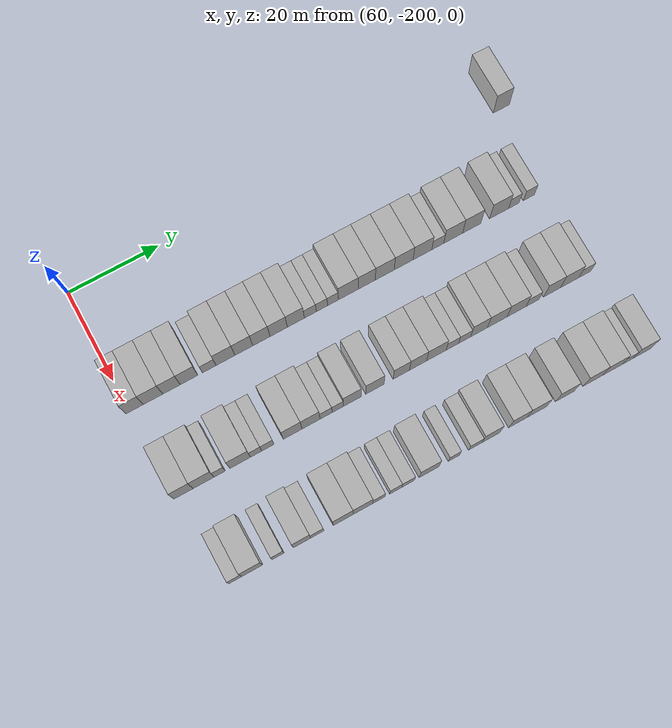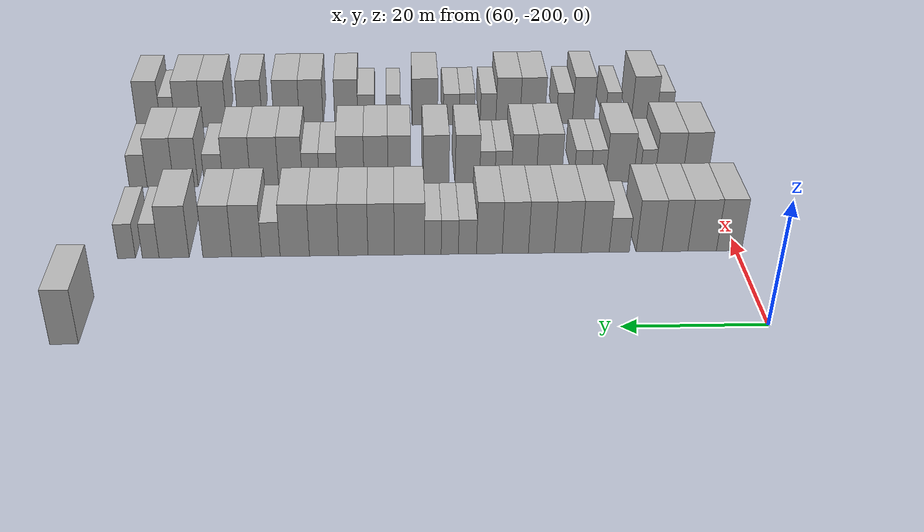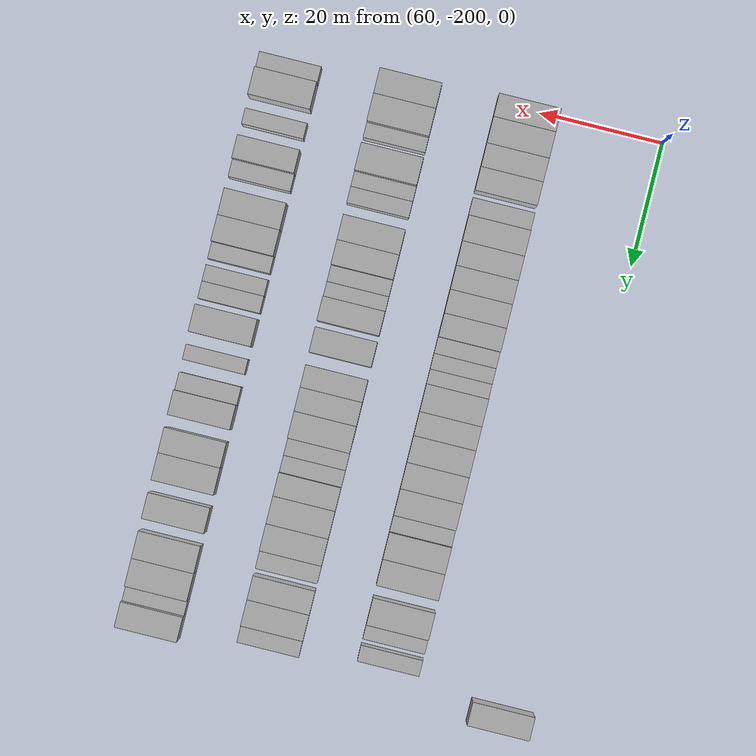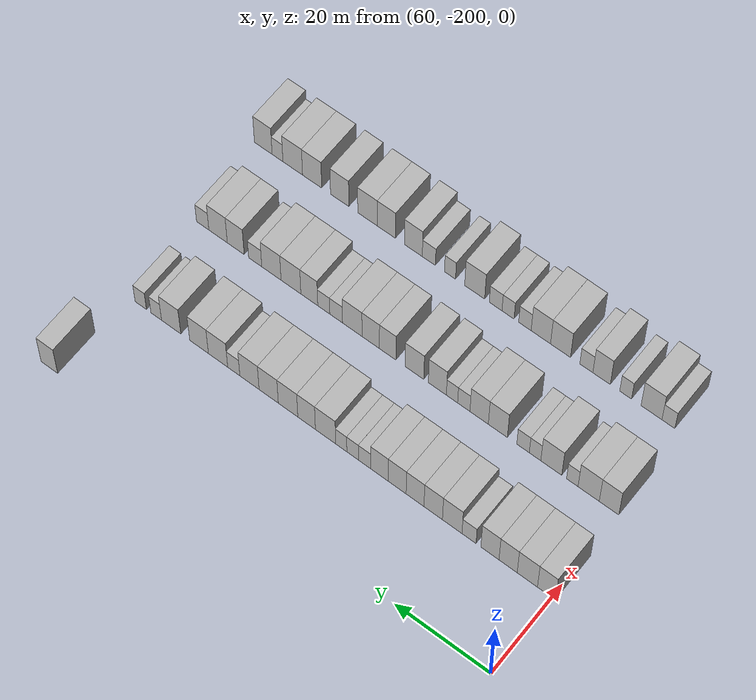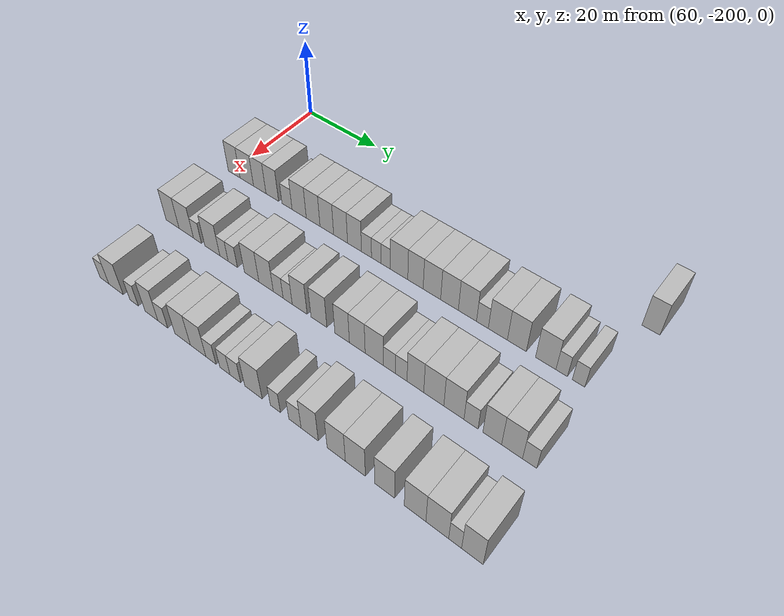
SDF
<sdf version="1.6">
 <world name="default">
  <model name="building_395">
   <static>1</static>
   <pose>63.0000 -105.9055 0 0.000000 0.000000 0.000000</pose>
   <link name="link">
    <pose>0 0 4.50 0 0 0</pose>
    <collision name="collision"><geometry><box><size>10.0000 3.7795 9.0000</size></box></geometry></collision>
    <visual name="visual">
     <cast_shadows>0</cast_shadows>
     <geometry><box><size>10.0000 3.7795 9.0000</size></box></geometry>
     <material>
      <script>
       <uri>model://HANNAS_wall/materials/scripts</uri>
       <uri>model://HANNAS_wall/materials/textures</uri>
       <name>vrc/HANNAS_wall</name>
      </script>
     </material>
    </visual>
   </link>
  </model>
  <model name="building_557">
   <static>1</static>
   <pose>82.0000 -198.8554 0 0.000000 0.000000 0.000000</pose>
   <link name="link">
    <pose>0 0 4.50 0 0 0</pose>
    <collision name="collision"><geometry><box><size>10.0000 3.7321 9.0000</size></box></geometry></collision>
    <visual name="visual">
     <cast_shadows>0</cast_shadows>
     <geometry><box><size>10.0000 3.7321 9.0000</size></box></geometry>
     <material>
      <script>
       <uri>model://HANNAS_wall/materials/scripts</uri>
       <uri>model://HANNAS_wall/materials/textures</uri>
       <name>vrc/HANNAS_wall</name>
      </script>
     </material>
    </visual>
   </link>
  </model>
  <model name="building_558">
   <static>1</static>
   <pose>82.0000 -194.8792 0 0.000000 0.000000 0.000000</pose>
   <link name="link">
    <pose>0 0 4.50 0 0 0</pose>
    <collision name="collision"><geometry><box><size>10.0000 4.2202 9.0000</size></box></geometry></collision>
    <visual name="visual">
     <cast_shadows>0</cast_shadows>
     <geometry><box><size>10.0000 4.2202 9.0000</size></box></geometry>
     <material>
      <script>
       <uri>model://HANNAS_wall/materials/scripts</uri>
       <uri>model://HANNAS_wall/materials/textures</uri>
       <name>vrc/HANNAS_wall</name>
      </script>
     </material>
    </visual>
   </link>
  </model>
  <model name="building_559">
   <static>1</static>
   <pose>82.0000 -190.8675 0 0.000000 0.000000 0.000000</pose>
   <link name="link">
    <pose>0 0 4.50 0 0 0</pose>
    <collision name="collision"><geometry><box><size>10.0000 3.8033 9.0000</size></box></geometry></collision>
    <visual name="visual">
     <cast_shadows>0</cast_shadows>
     <geometry><box><size>10.0000 3.8033 9.0000</size></box></geometry>
     <material>
      <script>
       <uri>model://HANNAS_wall/materials/scripts</uri>
       <uri>model://HANNAS_wall/materials/textures</uri>
       <name>vrc/HANNAS_wall</name>
      </script>
     </material>
    </visual>
   </link>
  </model>
  <model name="building_560">
   <static>1</static>
   <pose>82.0000 -187.0584 0 0.000000 0.000000 0.000000</pose>
   <link name="link">
    <pose>0 0 4.50 0 0 0</pose>
    <collision name="collision"><geometry><box><size>10.0000 3.8149 9.0000</size></box></geometry></collision>
    <visual name="visual">
     <cast_shadows>0</cast_shadows>
     <geometry><box><size>10.0000 3.8149 9.0000</size></box></geometry>
     <material>
      <script>
       <uri>model://HANNAS_wall/materials/scripts</uri>
       <uri>model://HANNAS_wall/materials/textures</uri>
       <name>vrc/HANNAS_wall</name>
      </script>
     </material>
    </visual>
   </link>
  </model>
  <model name="building_561">
   <static>1</static>
   <pose>82.0000 -182.6638 0 0.000000 0.000000 0.000000</pose>
   <link name="link">
    <pose>0 0 3.00 0 0 0</pose>
    <collision name="collision"><geometry><box><size>10.0000 2.9743 6.0000</size></box></geometry></collision>
    <visual name="visual">
     <cast_shadows>0</cast_shadows>
     <geometry><box><size>10.0000 2.9743 6.0000</size></box></geometry>
     <material>
      <script>
       <uri>model://HANNAS_wall/materials/scripts</uri>
       <uri>model://HANNAS_wall/materials/textures</uri>
       <name>vrc/HANNAS_wall</name>
      </script>
     </material>
    </visual>
   </link>
  </model>
  <model name="building_562">
   <static>1</static>
   <pose>82.0000 -179.1077 0 0.000000 0.000000 0.000000</pose>
   <link name="link">
    <pose>0 0 4.50 0 0 0</pose>
    <collision name="collision"><geometry><box><size>10.0000 4.1378 9.0000</size></box></geometry></collision>
    <visual name="visual">
     <cast_shadows>0</cast_shadows>
     <geometry><box><size>10.0000 4.1378 9.0000</size></box></geometry>
     <material>
      <script>
       <uri>model://HANNAS_wall/materials/scripts</uri>
       <uri>model://HANNAS_wall/materials/textures</uri>
       <name>vrc/HANNAS_wall</name>
      </script>
     </material>
    </visual>
   </link>
  </model>
  <model name="building_563">
   <static>1</static>
   <pose>82.0000 -175.0739 0 0.000000 0.000000 0.000000</pose>
   <link name="link">
    <pose>0 0 4.50 0 0 0</pose>
    <collision name="collision"><geometry><box><size>10.0000 3.9298 9.0000</size></box></geometry></collision>
    <visual name="visual">
     <cast_shadows>0</cast_shadows>
     <geometry><box><size>10.0000 3.9298 9.0000</size></box></geometry>
     <material>
      <script>
       <uri>model://HANNAS_wall/materials/scripts</uri>
       <uri>model://HANNAS_wall/materials/textures</uri>
       <name>vrc/HANNAS_wall</name>
      </script>
     </material>
    </visual>
   </link>
  </model>
  <model name="building_564">
   <static>1</static>
   <pose>82.0000 -171.1996 0 0.000000 0.000000 0.000000</pose>
   <link name="link">
    <pose>0 0 4.50 0 0 0</pose>
    <collision name="collision"><geometry><box><size>10.0000 3.8189 9.0000</size></box></geometry></collision>
    <visual name="visual">
     <cast_shadows>0</cast_shadows>
     <geometry><box><size>10.0000 3.8189 9.0000</size></box></geometry>
     <material>
      <script>
       <uri>model://HANNAS_wall/materials/scripts</uri>
       <uri>model://HANNAS_wall/materials/textures</uri>
       <name>vrc/HANNAS_wall</name>
      </script>
     </material>
    </visual>
   </link>
  </model>
  <model name="building_565">
   <static>1</static>
   <pose>82.0000 -167.3756 0 0.000000 0.000000 0.000000</pose>
   <link name="link">
    <pose>0 0 4.50 0 0 0</pose>
    <collision name="collision"><geometry><box><size>10.0000 3.8292 9.0000</size></box></geometry></collision>
    <visual name="visual">
     <cast_shadows>0</cast_shadows>
     <geometry><box><size>10.0000 3.8292 9.0000</size></box></geometry>
     <material>
      <script>
       <uri>model://HANNAS_wall/materials/scripts</uri>
       <uri>model://HANNAS_wall/materials/textures</uri>
       <name>vrc/HANNAS_wall</name>
      </script>
     </material>
    </visual>
   </link>
  </model>
  <model name="building_566">
   <static>1</static>
   <pose>82.0000 -163.5736 0 0.000000 0.000000 0.000000</pose>
   <link name="link">
    <pose>0 0 4.50 0 0 0</pose>
    <collision name="collision"><geometry><box><size>10.0000 3.7747 9.0000</size></box></geometry></collision>
    <visual name="visual">
     <cast_shadows>0</cast_shadows>
     <geometry><box><size>10.0000 3.7747 9.0000</size></box></geometry>
     <material>
      <script>
       <uri>model://HANNAS_wall/materials/scripts</uri>
       <uri>model://HANNAS_wall/materials/textures</uri>
       <name>vrc/HANNAS_wall</name>
      </script>
     </material>
    </visual>
   </link>
  </model>
  <model name="building_567">
   <static>1</static>
   <pose>82.0000 -160.3557 0 0.000000 0.000000 0.000000</pose>
   <link name="link">
    <pose>0 0 3.00 0 0 0</pose>
    <collision name="collision"><geometry><box><size>10.0000 2.6612 6.0000</size></box></geometry></collision>
    <visual name="visual">
     <cast_shadows>0</cast_shadows>
     <geometry><box><size>10.0000 2.6612 6.0000</size></box></geometry>
     <material>
      <script>
       <uri>model://HANNAS_wall/materials/scripts</uri>
       <uri>model://HANNAS_wall/materials/textures</uri>
       <name>vrc/HANNAS_wall</name>
      </script>
     </material>
    </visual>
   </link>
  </model>
  <model name="building_568">
   <static>1</static>
   <pose>82.0000 -157.7683 0 0.000000 0.000000 0.000000</pose>
   <link name="link">
    <pose>0 0 3.00 0 0 0</pose>
    <collision name="collision"><geometry><box><size>10.0000 2.5135 6.0000</size></box></geometry></collision>
    <visual name="visual">
     <cast_shadows>0</cast_shadows>
     <geometry><box><size>10.0000 2.5135 6.0000</size></box></geometry>
     <material>
      <script>
       <uri>model://HANNAS_wall/materials/scripts</uri>
       <uri>model://HANNAS_wall/materials/textures</uri>
       <name>vrc/HANNAS_wall</name>
      </script>
     </material>
    </visual>
   </link>
  </model>
  <model name="building_569">
   <static>1</static>
   <pose>82.0000 -155.3016 0 0.000000 0.000000 0.000000</pose>
   <link name="link">
    <pose>0 0 3.00 0 0 0</pose>
    <collision name="collision"><geometry><box><size>10.0000 2.4199 6.0000</size></box></geometry></collision>
    <visual name="visual">
     <cast_shadows>0</cast_shadows>
     <geometry><box><size>10.0000 2.4199 6.0000</size></box></geometry>
     <material>
      <script>
       <uri>model://HANNAS_wall/materials/scripts</uri>
       <uri>model://HANNAS_wall/materials/textures</uri>
       <name>vrc/HANNAS_wall</name>
      </script>
     </material>
    </visual>
   </link>
  </model>
  <model name="building_570">
   <static>1</static>
   <pose>82.0000 -151.8753 0 0.000000 0.000000 0.000000</pose>
   <link name="link">
    <pose>0 0 4.50 0 0 0</pose>
    <collision name="collision"><geometry><box><size>10.0000 4.4326 9.0000</size></box></geometry></collision>
    <visual name="visual">
     <cast_shadows>0</cast_shadows>
     <geometry><box><size>10.0000 4.4326 9.0000</size></box></geometry>
     <material>
      <script>
       <uri>model://HANNAS_wall/materials/scripts</uri>
       <uri>model://HANNAS_wall/materials/textures</uri>
       <name>vrc/HANNAS_wall</name>
      </script>
     </material>
    </visual>
   </link>
  </model>
  <model name="building_571">
   <static>1</static>
   <pose>82.0000 -147.7309 0 0.000000 0.000000 0.000000</pose>
   <link name="link">
    <pose>0 0 4.50 0 0 0</pose>
    <collision name="collision"><geometry><box><size>10.0000 3.8563 9.0000</size></box></geometry></collision>
    <visual name="visual">
     <cast_shadows>0</cast_shadows>
     <geometry><box><size>10.0000 3.8563 9.0000</size></box></geometry>
     <material>
      <script>
       <uri>model://HANNAS_wall/materials/scripts</uri>
       <uri>model://HANNAS_wall/materials/textures</uri>
       <name>vrc/HANNAS_wall</name>
      </script>
     </material>
    </visual>
   </link>
  </model>
  <model name="building_572">
   <static>1</static>
   <pose>82.0000 -143.6566 0 0.000000 0.000000 0.000000</pose>
   <link name="link">
    <pose>0 0 4.50 0 0 0</pose>
    <collision name="collision"><geometry><box><size>10.0000 4.2924 9.0000</size></box></geometry></collision>
    <visual name="visual">
     <cast_shadows>0</cast_shadows>
     <geometry><box><size>10.0000 4.2924 9.0000</size></box></geometry>
     <material>
      <script>
       <uri>model://HANNAS_wall/materials/scripts</uri>
       <uri>model://HANNAS_wall/materials/textures</uri>
       <name>vrc/HANNAS_wall</name>
      </script>
     </material>
    </visual>
   </link>
  </model>
  <model name="building_573">
   <static>1</static>
   <pose>82.0000 -139.3847 0 0.000000 0.000000 0.000000</pose>
   <link name="link">
    <pose>0 0 4.50 0 0 0</pose>
    <collision name="collision"><geometry><box><size>10.0000 4.2512 9.0000</size></box></geometry></collision>
    <visual name="visual">
     <cast_shadows>0</cast_shadows>
     <geometry><box><size>10.0000 4.2512 9.0000</size></box></geometry>
     <material>
      <script>
       <uri>model://HANNAS_wall/materials/scripts</uri>
       <uri>model://HANNAS_wall/materials/textures</uri>
       <name>vrc/HANNAS_wall</name>
      </script>
     </material>
    </visual>
   </link>
  </model>
  <model name="building_574">
   <static>1</static>
   <pose>82.0000 -135.1245 0 0.000000 0.000000 0.000000</pose>
   <link name="link">
    <pose>0 0 4.50 0 0 0</pose>
    <collision name="collision"><geometry><box><size>10.0000 4.2693 9.0000</size></box></geometry></collision>
    <visual name="visual">
     <cast_shadows>0</cast_shadows>
     <geometry><box><size>10.0000 4.2693 9.0000</size></box></geometry>
     <material>
      <script>
       <uri>model://HANNAS_wall/materials/scripts</uri>
       <uri>model://HANNAS_wall/materials/textures</uri>
       <name>vrc/HANNAS_wall</name>
      </script>
     </material>
    </visual>
   </link>
  </model>
  <model name="building_575">
   <static>1</static>
   <pose>82.0000 -131.6314 0 0.000000 0.000000 0.000000</pose>
   <link name="link">
    <pose>0 0 3.00 0 0 0</pose>
    <collision name="collision"><geometry><box><size>10.0000 2.7168 6.0000</size></box></geometry></collision>
    <visual name="visual">
     <cast_shadows>0</cast_shadows>
     <geometry><box><size>10.0000 2.7168 6.0000</size></box></geometry>
     <material>
      <script>
       <uri>model://HANNAS_wall/materials/scripts</uri>
       <uri>model://HANNAS_wall/materials/textures</uri>
       <name>vrc/HANNAS_wall</name>
      </script>
     </material>
    </visual>
   </link>
  </model>
  <model name="building_576">
   <static>1</static>
   <pose>82.0000 -128.1148 0 0.000000 0.000000 0.000000</pose>
   <link name="link">
    <pose>0 0 4.50 0 0 0</pose>
    <collision name="collision"><geometry><box><size>10.0000 4.3165 9.0000</size></box></geometry></collision>
    <visual name="visual">
     <cast_shadows>0</cast_shadows>
     <geometry><box><size>10.0000 4.3165 9.0000</size></box></geometry>
     <material>
      <script>
       <uri>model://HANNAS_wall/materials/scripts</uri>
       <uri>model://HANNAS_wall/materials/textures</uri>
       <name>vrc/HANNAS_wall</name>
      </script>
     </material>
    </visual>
   </link>
  </model>
  <model name="building_577">
   <static>1</static>
   <pose>82.0000 -123.8560 0 0.000000 0.000000 0.000000</pose>
   <link name="link">
    <pose>0 0 4.50 0 0 0</pose>
    <collision name="collision"><geometry><box><size>10.0000 4.2010 9.0000</size></box></geometry></collision>
    <visual name="visual">
     <cast_shadows>0</cast_shadows>
     <geometry><box><size>10.0000 4.2010 9.0000</size></box></geometry>
     <material>
      <script>
       <uri>model://HANNAS_wall/materials/scripts</uri>
       <uri>model://HANNAS_wall/materials/textures</uri>
       <name>vrc/HANNAS_wall</name>
      </script>
     </material>
    </visual>
   </link>
  </model>
  <model name="building_578">
   <static>1</static>
   <pose>82.0000 -117.5684 0 0.000000 0.000000 0.000000</pose>
   <link name="link">
    <pose>0 0 4.50 0 0 0</pose>
    <collision name="collision"><geometry><box><size>10.0000 4.3741 9.0000</size></box></geometry></collision>
    <visual name="visual">
     <cast_shadows>0</cast_shadows>
     <geometry><box><size>10.0000 4.3741 9.0000</size></box></geometry>
     <material>
      <script>
       <uri>model://HANNAS_wall/materials/scripts</uri>
       <uri>model://HANNAS_wall/materials/textures</uri>
       <name>vrc/HANNAS_wall</name>
      </script>
     </material>
    </visual>
   </link>
  </model>
  <model name="building_579">
   <static>1</static>
   <pose>82.0000 -114.1693 0 0.000000 0.000000 0.000000</pose>
   <link name="link">
    <pose>0 0 3.00 0 0 0</pose>
    <collision name="collision"><geometry><box><size>10.0000 2.4241 6.0000</size></box></geometry></collision>
    <visual name="visual">
     <cast_shadows>0</cast_shadows>
     <geometry><box><size>10.0000 2.4241 6.0000</size></box></geometry>
     <material>
      <script>
       <uri>model://HANNAS_wall/materials/scripts</uri>
       <uri>model://HANNAS_wall/materials/textures</uri>
       <name>vrc/HANNAS_wall</name>
      </script>
     </material>
    </visual>
   </link>
  </model>
  <model name="building_580">
   <static>1</static>
   <pose>82.0000 -110.6590 0 0.000000 0.000000 0.000000</pose>
   <link name="link">
    <pose>0 0 3.00 0 0 0</pose>
    <collision name="collision"><geometry><box><size>10.0000 2.5965 6.0000</size></box></geometry></collision>
    <visual name="visual">
     <cast_shadows>0</cast_shadows>
     <geometry><box><size>10.0000 2.5965 6.0000</size></box></geometry>
     <material>
      <script>
       <uri>model://HANNAS_wall/materials/scripts</uri>
       <uri>model://HANNAS_wall/materials/textures</uri>
       <name>vrc/HANNAS_wall</name>
      </script>
     </material>
    </visual>
   </link>
  </model>
  <model name="building_739">
   <static>1</static>
   <pose>101.0000 -198.0289 0 0.000000 0.000000 0.000000</pose>
   <link name="link">
    <pose>0 0 4.50 0 0 0</pose>
    <collision name="collision"><geometry><box><size>10.0000 4.0916 9.0000</size></box></geometry></collision>
    <visual name="visual">
     <cast_shadows>0</cast_shadows>
     <geometry><box><size>10.0000 4.0916 9.0000</size></box></geometry>
     <material>
      <script>
       <uri>model://HANNAS_wall/materials/scripts</uri>
       <uri>model://HANNAS_wall/materials/textures</uri>
       <name>vrc/HANNAS_wall</name>
      </script>
     </material>
    </visual>
   </link>
  </model>
  <model name="building_740">
   <static>1</static>
   <pose>101.0000 -193.7559 0 0.000000 0.000000 0.000000</pose>
   <link name="link">
    <pose>0 0 4.50 0 0 0</pose>
    <collision name="collision"><geometry><box><size>10.0000 4.4545 9.0000</size></box></geometry></collision>
    <visual name="visual">
     <cast_shadows>0</cast_shadows>
     <geometry><box><size>10.0000 4.4545 9.0000</size></box></geometry>
     <material>
      <script>
       <uri>model://HANNAS_wall/materials/scripts</uri>
       <uri>model://HANNAS_wall/materials/textures</uri>
       <name>vrc/HANNAS_wall</name>
      </script>
     </material>
    </visual>
   </link>
  </model>
  <model name="building_741">
   <static>1</static>
   <pose>101.0000 -190.3170 0 0.000000 0.000000 0.000000</pose>
   <link name="link">
    <pose>0 0 3.00 0 0 0</pose>
    <collision name="collision"><geometry><box><size>10.0000 2.4233 6.0000</size></box></geometry></collision>
    <visual name="visual">
     <cast_shadows>0</cast_shadows>
     <geometry><box><size>10.0000 2.4233 6.0000</size></box></geometry>
     <material>
      <script>
       <uri>model://HANNAS_wall/materials/scripts</uri>
       <uri>model://HANNAS_wall/materials/textures</uri>
       <name>vrc/HANNAS_wall</name>
      </script>
     </material>
    </visual>
   </link>
  </model>
  <model name="building_742">
   <static>1</static>
   <pose>101.0000 -185.8836 0 0.000000 0.000000 0.000000</pose>
   <link name="link">
    <pose>0 0 4.50 0 0 0</pose>
    <collision name="collision"><geometry><box><size>10.0000 4.4436 9.0000</size></box></geometry></collision>
    <visual name="visual">
     <cast_shadows>0</cast_shadows>
     <geometry><box><size>10.0000 4.4436 9.0000</size></box></geometry>
     <material>
      <script>
       <uri>model://HANNAS_wall/materials/scripts</uri>
       <uri>model://HANNAS_wall/materials/textures</uri>
       <name>vrc/HANNAS_wall</name>
      </script>
     </material>
    </visual>
   </link>
  </model>
  <model name="building_743">
   <static>1</static>
   <pose>101.0000 -182.4422 0 0.000000 0.000000 0.000000</pose>
   <link name="link">
    <pose>0 0 3.00 0 0 0</pose>
    <collision name="collision"><geometry><box><size>10.0000 2.4392 6.0000</size></box></geometry></collision>
    <visual name="visual">
     <cast_shadows>0</cast_shadows>
     <geometry><box><size>10.0000 2.4392 6.0000</size></box></geometry>
     <material>
      <script>
       <uri>model://HANNAS_wall/materials/scripts</uri>
       <uri>model://HANNAS_wall/materials/textures</uri>
       <name>vrc/HANNAS_wall</name>
      </script>
     </material>
    </visual>
   </link>
  </model>
  <model name="building_744">
   <static>1</static>
   <pose>101.0000 -179.8906 0 0.000000 0.000000 0.000000</pose>
   <link name="link">
    <pose>0 0 3.00 0 0 0</pose>
    <collision name="collision"><geometry><box><size>10.0000 2.6640 6.0000</size></box></geometry></collision>
    <visual name="visual">
     <cast_shadows>0</cast_shadows>
     <geometry><box><size>10.0000 2.6640 6.0000</size></box></geometry>
     <material>
      <script>
       <uri>model://HANNAS_wall/materials/scripts</uri>
       <uri>model://HANNAS_wall/materials/textures</uri>
       <name>vrc/HANNAS_wall</name>
      </script>
     </material>
    </visual>
   </link>
  </model>
  <model name="building_745">
   <static>1</static>
   <pose>101.0000 -174.5180 0 0.000000 0.000000 0.000000</pose>
   <link name="link">
    <pose>0 0 4.50 0 0 0</pose>
    <collision name="collision"><geometry><box><size>10.0000 4.0811 9.0000</size></box></geometry></collision>
    <visual name="visual">
     <cast_shadows>0</cast_shadows>
     <geometry><box><size>10.0000 4.0811 9.0000</size></box></geometry>
     <material>
      <script>
       <uri>model://HANNAS_wall/materials/scripts</uri>
       <uri>model://HANNAS_wall/materials/textures</uri>
       <name>vrc/HANNAS_wall</name>
      </script>
     </material>
    </visual>
   </link>
  </model>
  <model name="building_746">
   <static>1</static>
   <pose>101.0000 -170.4992 0 0.000000 0.000000 0.000000</pose>
   <link name="link">
    <pose>0 0 4.50 0 0 0</pose>
    <collision name="collision"><geometry><box><size>10.0000 3.9564 9.0000</size></box></geometry></collision>
    <visual name="visual">
     <cast_shadows>0</cast_shadows>
     <geometry><box><size>10.0000 3.9564 9.0000</size></box></geometry>
     <material>
      <script>
       <uri>model://HANNAS_wall/materials/scripts</uri>
       <uri>model://HANNAS_wall/materials/textures</uri>
       <name>vrc/HANNAS_wall</name>
      </script>
     </material>
    </visual>
   </link>
  </model>
  <model name="building_747">
   <static>1</static>
   <pose>101.0000 -167.1943 0 0.000000 0.000000 0.000000</pose>
   <link name="link">
    <pose>0 0 3.00 0 0 0</pose>
    <collision name="collision"><geometry><box><size>10.0000 2.6534 6.0000</size></box></geometry></collision>
    <visual name="visual">
     <cast_shadows>0</cast_shadows>
     <geometry><box><size>10.0000 2.6534 6.0000</size></box></geometry>
     <material>
      <script>
       <uri>model://HANNAS_wall/materials/scripts</uri>
       <uri>model://HANNAS_wall/materials/textures</uri>
       <name>vrc/HANNAS_wall</name>
      </script>
     </material>
    </visual>
   </link>
  </model>
  <model name="building_748">
   <static>1</static>
   <pose>101.0000 -164.6486 0 0.000000 0.000000 0.000000</pose>
   <link name="link">
    <pose>0 0 3.00 0 0 0</pose>
    <collision name="collision"><geometry><box><size>10.0000 2.4381 6.0000</size></box></geometry></collision>
    <visual name="visual">
     <cast_shadows>0</cast_shadows>
     <geometry><box><size>10.0000 2.4381 6.0000</size></box></geometry>
     <material>
      <script>
       <uri>model://HANNAS_wall/materials/scripts</uri>
       <uri>model://HANNAS_wall/materials/textures</uri>
       <name>vrc/HANNAS_wall</name>
      </script>
     </material>
    </visual>
   </link>
  </model>
  <model name="building_749">
   <static>1</static>
   <pose>101.0000 -161.4724 0 0.000000 0.000000 0.000000</pose>
   <link name="link">
    <pose>0 0 4.50 0 0 0</pose>
    <collision name="collision"><geometry><box><size>10.0000 3.9143 9.0000</size></box></geometry></collision>
    <visual name="visual">
     <cast_shadows>0</cast_shadows>
     <geometry><box><size>10.0000 3.9143 9.0000</size></box></geometry>
     <material>
      <script>
       <uri>model://HANNAS_wall/materials/scripts</uri>
       <uri>model://HANNAS_wall/materials/textures</uri>
       <name>vrc/HANNAS_wall</name>
      </script>
     </material>
    </visual>
   </link>
  </model>
  <model name="building_750">
   <static>1</static>
   <pose>101.0000 -156.4765 0 0.000000 0.000000 0.000000</pose>
   <link name="link">
    <pose>0 0 4.50 0 0 0</pose>
    <collision name="collision"><geometry><box><size>10.0000 4.0774 9.0000</size></box></geometry></collision>
    <visual name="visual">
     <cast_shadows>0</cast_shadows>
     <geometry><box><size>10.0000 4.0774 9.0000</size></box></geometry>
     <material>
      <script>
       <uri>model://HANNAS_wall/materials/scripts</uri>
       <uri>model://HANNAS_wall/materials/textures</uri>
       <name>vrc/HANNAS_wall</name>
      </script>
     </material>
    </visual>
   </link>
  </model>
  <model name="building_751">
   <static>1</static>
   <pose>101.0000 -150.6228 0 0.000000 0.000000 0.000000</pose>
   <link name="link">
    <pose>0 0 4.50 0 0 0</pose>
    <collision name="collision"><geometry><box><size>10.0000 3.6301 9.0000</size></box></geometry></collision>
    <visual name="visual">
     <cast_shadows>0</cast_shadows>
     <geometry><box><size>10.0000 3.6301 9.0000</size></box></geometry>
     <material>
      <script>
       <uri>model://HANNAS_wall/materials/scripts</uri>
       <uri>model://HANNAS_wall/materials/textures</uri>
       <name>vrc/HANNAS_wall</name>
      </script>
     </material>
    </visual>
   </link>
  </model>
  <model name="building_752">
   <static>1</static>
   <pose>101.0000 -146.8909 0 0.000000 0.000000 0.000000</pose>
   <link name="link">
    <pose>0 0 4.50 0 0 0</pose>
    <collision name="collision"><geometry><box><size>10.0000 3.8336 9.0000</size></box></geometry></collision>
    <visual name="visual">
     <cast_shadows>0</cast_shadows>
     <geometry><box><size>10.0000 3.8336 9.0000</size></box></geometry>
     <material>
      <script>
       <uri>model://HANNAS_wall/materials/scripts</uri>
       <uri>model://HANNAS_wall/materials/textures</uri>
       <name>vrc/HANNAS_wall</name>
      </script>
     </material>
    </visual>
   </link>
  </model>
  <model name="building_753">
   <static>1</static>
   <pose>101.0000 -142.8129 0 0.000000 0.000000 0.000000</pose>
   <link name="link">
    <pose>0 0 4.50 0 0 0</pose>
    <collision name="collision"><geometry><box><size>10.0000 4.3223 9.0000</size></box></geometry></collision>
    <visual name="visual">
     <cast_shadows>0</cast_shadows>
     <geometry><box><size>10.0000 4.3223 9.0000</size></box></geometry>
     <material>
      <script>
       <uri>model://HANNAS_wall/materials/scripts</uri>
       <uri>model://HANNAS_wall/materials/textures</uri>
       <name>vrc/HANNAS_wall</name>
      </script>
     </material>
    </visual>
   </link>
  </model>
  <model name="building_754">
   <static>1</static>
   <pose>101.0000 -139.2379 0 0.000000 0.000000 0.000000</pose>
   <link name="link">
    <pose>0 0 3.00 0 0 0</pose>
    <collision name="collision"><geometry><box><size>10.0000 2.8278 6.0000</size></box></geometry></collision>
    <visual name="visual">
     <cast_shadows>0</cast_shadows>
     <geometry><box><size>10.0000 2.8278 6.0000</size></box></geometry>
     <material>
      <script>
       <uri>model://HANNAS_wall/materials/scripts</uri>
       <uri>model://HANNAS_wall/materials/textures</uri>
       <name>vrc/HANNAS_wall</name>
      </script>
     </material>
    </visual>
   </link>
  </model>
  <model name="building_755">
   <static>1</static>
   <pose>101.0000 -136.4815 0 0.000000 0.000000 0.000000</pose>
   <link name="link">
    <pose>0 0 3.00 0 0 0</pose>
    <collision name="collision"><geometry><box><size>10.0000 2.6850 6.0000</size></box></geometry></collision>
    <visual name="visual">
     <cast_shadows>0</cast_shadows>
     <geometry><box><size>10.0000 2.6850 6.0000</size></box></geometry>
     <material>
      <script>
       <uri>model://HANNAS_wall/materials/scripts</uri>
       <uri>model://HANNAS_wall/materials/textures</uri>
       <name>vrc/HANNAS_wall</name>
      </script>
     </material>
    </visual>
   </link>
  </model>
  <model name="building_756">
   <static>1</static>
   <pose>101.0000 -133.2478 0 0.000000 0.000000 0.000000</pose>
   <link name="link">
    <pose>0 0 4.50 0 0 0</pose>
    <collision name="collision"><geometry><box><size>10.0000 3.7824 9.0000</size></box></geometry></collision>
    <visual name="visual">
     <cast_shadows>0</cast_shadows>
     <geometry><box><size>10.0000 3.7824 9.0000</size></box></geometry>
     <material>
      <script>
       <uri>model://HANNAS_wall/materials/scripts</uri>
       <uri>model://HANNAS_wall/materials/textures</uri>
       <name>vrc/HANNAS_wall</name>
      </script>
     </material>
    </visual>
   </link>
  </model>
  <model name="building_757">
   <static>1</static>
   <pose>101.0000 -129.1326 0 0.000000 0.000000 0.000000</pose>
   <link name="link">
    <pose>0 0 4.50 0 0 0</pose>
    <collision name="collision"><geometry><box><size>10.0000 4.4480 9.0000</size></box></geometry></collision>
    <visual name="visual">
     <cast_shadows>0</cast_shadows>
     <geometry><box><size>10.0000 4.4480 9.0000</size></box></geometry>
     <material>
      <script>
       <uri>model://HANNAS_wall/materials/scripts</uri>
       <uri>model://HANNAS_wall/materials/textures</uri>
       <name>vrc/HANNAS_wall</name>
      </script>
     </material>
    </visual>
   </link>
  </model>
  <model name="building_758">
   <static>1</static>
   <pose>101.0000 -124.7315 0 0.000000 0.000000 0.000000</pose>
   <link name="link">
    <pose>0 0 4.50 0 0 0</pose>
    <collision name="collision"><geometry><box><size>10.0000 4.3541 9.0000</size></box></geometry></collision>
    <visual name="visual">
     <cast_shadows>0</cast_shadows>
     <geometry><box><size>10.0000 4.3541 9.0000</size></box></geometry>
     <material>
      <script>
       <uri>model://HANNAS_wall/materials/scripts</uri>
       <uri>model://HANNAS_wall/materials/textures</uri>
       <name>vrc/HANNAS_wall</name>
      </script>
     </material>
    </visual>
   </link>
  </model>
  <model name="building_759">
   <static>1</static>
   <pose>101.0000 -121.0647 0 0.000000 0.000000 0.000000</pose>
   <link name="link">
    <pose>0 0 3.00 0 0 0</pose>
    <collision name="collision"><geometry><box><size>10.0000 2.9795 6.0000</size></box></geometry></collision>
    <visual name="visual">
     <cast_shadows>0</cast_shadows>
     <geometry><box><size>10.0000 2.9795 6.0000</size></box></geometry>
     <material>
      <script>
       <uri>model://HANNAS_wall/materials/scripts</uri>
       <uri>model://HANNAS_wall/materials/textures</uri>
       <name>vrc/HANNAS_wall</name>
      </script>
     </material>
    </visual>
   </link>
  </model>
  <model name="building_760">
   <static>1</static>
   <pose>101.0000 -116.6442 0 0.000000 0.000000 0.000000</pose>
   <link name="link">
    <pose>0 0 4.50 0 0 0</pose>
    <collision name="collision"><geometry><box><size>10.0000 3.8616 9.0000</size></box></geometry></collision>
    <visual name="visual">
     <cast_shadows>0</cast_shadows>
     <geometry><box><size>10.0000 3.8616 9.0000</size></box></geometry>
     <material>
      <script>
       <uri>model://HANNAS_wall/materials/scripts</uri>
       <uri>model://HANNAS_wall/materials/textures</uri>
       <name>vrc/HANNAS_wall</name>
      </script>
     </material>
    </visual>
   </link>
  </model>
  <model name="building_761">
   <static>1</static>
   <pose>101.0000 -112.6063 0 0.000000 0.000000 0.000000</pose>
   <link name="link">
    <pose>0 0 4.50 0 0 0</pose>
    <collision name="collision"><geometry><box><size>10.0000 4.2142 9.0000</size></box></geometry></collision>
    <visual name="visual">
     <cast_shadows>0</cast_shadows>
     <geometry><box><size>10.0000 4.2142 9.0000</size></box></geometry>
     <material>
      <script>
       <uri>model://HANNAS_wall/materials/scripts</uri>
       <uri>model://HANNAS_wall/materials/textures</uri>
       <name>vrc/HANNAS_wall</name>
      </script>
     </material>
    </visual>
   </link>
  </model>
  <model name="building_762">
   <static>1</static>
   <pose>101.0000 -109.0830 0 0.000000 0.000000 0.000000</pose>
   <link name="link">
    <pose>0 0 3.00 0 0 0</pose>
    <collision name="collision"><geometry><box><size>10.0000 2.8324 6.0000</size></box></geometry></collision>
    <visual name="visual">
     <cast_shadows>0</cast_shadows>
     <geometry><box><size>10.0000 2.8324 6.0000</size></box></geometry>
     <material>
      <script>
       <uri>model://HANNAS_wall/materials/scripts</uri>
       <uri>model://HANNAS_wall/materials/textures</uri>
       <name>vrc/HANNAS_wall</name>
      </script>
     </material>
    </visual>
   </link>
  </model>
  <model name="building_920">
   <static>1</static>
   <pose>120.0000 -196.8695 0 0.000000 0.000000 0.000000</pose>
   <link name="link">
    <pose>0 0 3.00 0 0 0</pose>
    <collision name="collision"><geometry><box><size>10.0000 2.7189 6.0000</size></box></geometry></collision>
    <visual name="visual">
     <cast_shadows>0</cast_shadows>
     <geometry><box><size>10.0000 2.7189 6.0000</size></box></geometry>
     <material>
      <script>
       <uri>model://HANNAS_wall/materials/scripts</uri>
       <uri>model://HANNAS_wall/materials/textures</uri>
       <name>vrc/HANNAS_wall</name>
      </script>
     </material>
    </visual>
   </link>
  </model>
  <model name="building_921">
   <static>1</static>
   <pose>120.0000 -193.3033 0 0.000000 0.000000 0.000000</pose>
   <link name="link">
    <pose>0 0 4.50 0 0 0</pose>
    <collision name="collision"><geometry><box><size>10.0000 4.4135 9.0000</size></box></geometry></collision>
    <visual name="visual">
     <cast_shadows>0</cast_shadows>
     <geometry><box><size>10.0000 4.4135 9.0000</size></box></geometry>
     <material>
      <script>
       <uri>model://HANNAS_wall/materials/scripts</uri>
       <uri>model://HANNAS_wall/materials/textures</uri>
       <name>vrc/HANNAS_wall</name>
      </script>
     </material>
    </visual>
   </link>
  </model>
  <model name="building_922">
   <static>1</static>
   <pose>120.0000 -187.8351 0 0.000000 0.000000 0.000000</pose>
   <link name="link">
    <pose>0 0 3.00 0 0 0</pose>
    <collision name="collision"><geometry><box><size>10.0000 2.5229 6.0000</size></box></geometry></collision>
    <visual name="visual">
     <cast_shadows>0</cast_shadows>
     <geometry><box><size>10.0000 2.5229 6.0000</size></box></geometry>
     <material>
      <script>
       <uri>model://HANNAS_wall/materials/scripts</uri>
       <uri>model://HANNAS_wall/materials/textures</uri>
       <name>vrc/HANNAS_wall</name>
      </script>
     </material>
    </visual>
   </link>
  </model>
  <model name="building_923">
   <static>1</static>
   <pose>120.0000 -182.7124 0 0.000000 0.000000 0.000000</pose>
   <link name="link">
    <pose>0 0 4.50 0 0 0</pose>
    <collision name="collision"><geometry><box><size>10.0000 3.7225 9.0000</size></box></geometry></collision>
    <visual name="visual">
     <cast_shadows>0</cast_shadows>
     <geometry><box><size>10.0000 3.7225 9.0000</size></box></geometry>
     <material>
      <script>
       <uri>model://HANNAS_wall/materials/scripts</uri>
       <uri>model://HANNAS_wall/materials/textures</uri>
       <name>vrc/HANNAS_wall</name>
      </script>
     </material>
    </visual>
   </link>
  </model>
  <model name="building_924">
   <static>1</static>
   <pose>120.0000 -179.4538 0 0.000000 0.000000 0.000000</pose>
   <link name="link">
    <pose>0 0 3.00 0 0 0</pose>
    <collision name="collision"><geometry><box><size>10.0000 2.7946 6.0000</size></box></geometry></collision>
    <visual name="visual">
     <cast_shadows>0</cast_shadows>
     <geometry><box><size>10.0000 2.7946 6.0000</size></box></geometry>
     <material>
      <script>
       <uri>model://HANNAS_wall/materials/scripts</uri>
       <uri>model://HANNAS_wall/materials/textures</uri>
       <name>vrc/HANNAS_wall</name>
      </script>
     </material>
    </visual>
   </link>
  </model>
  <model name="building_925">
   <static>1</static>
   <pose>120.0000 -173.9021 0 0.000000 0.000000 0.000000</pose>
   <link name="link">
    <pose>0 0 4.50 0 0 0</pose>
    <collision name="collision"><geometry><box><size>10.0000 4.3089 9.0000</size></box></geometry></collision>
    <visual name="visual">
     <cast_shadows>0</cast_shadows>
     <geometry><box><size>10.0000 4.3089 9.0000</size></box></geometry>
     <material>
      <script>
       <uri>model://HANNAS_wall/materials/scripts</uri>
       <uri>model://HANNAS_wall/materials/textures</uri>
       <name>vrc/HANNAS_wall</name>
      </script>
     </material>
    </visual>
   </link>
  </model>
  <model name="building_926">
   <static>1</static>
   <pose>120.0000 -169.6489 0 0.000000 0.000000 0.000000</pose>
   <link name="link">
    <pose>0 0 4.50 0 0 0</pose>
    <collision name="collision"><geometry><box><size>10.0000 4.1974 9.0000</size></box></geometry></collision>
    <visual name="visual">
     <cast_shadows>0</cast_shadows>
     <geometry><box><size>10.0000 4.1974 9.0000</size></box></geometry>
     <material>
      <script>
       <uri>model://HANNAS_wall/materials/scripts</uri>
       <uri>model://HANNAS_wall/materials/textures</uri>
       <name>vrc/HANNAS_wall</name>
      </script>
     </material>
    </visual>
   </link>
  </model>
  <model name="building_927">
   <static>1</static>
   <pose>120.0000 -166.1952 0 0.000000 0.000000 0.000000</pose>
   <link name="link">
    <pose>0 0 3.00 0 0 0</pose>
    <collision name="collision"><geometry><box><size>10.0000 2.7101 6.0000</size></box></geometry></collision>
    <visual name="visual">
     <cast_shadows>0</cast_shadows>
     <geometry><box><size>10.0000 2.7101 6.0000</size></box></geometry>
     <material>
      <script>
       <uri>model://HANNAS_wall/materials/scripts</uri>
       <uri>model://HANNAS_wall/materials/textures</uri>
       <name>vrc/HANNAS_wall</name>
      </script>
     </material>
    </visual>
   </link>
  </model>
  <model name="building_928">
   <static>1</static>
   <pose>120.0000 -162.5245 0 0.000000 0.000000 0.000000</pose>
   <link name="link">
    <pose>0 0 3.00 0 0 0</pose>
    <collision name="collision"><geometry><box><size>10.0000 2.6312 6.0000</size></box></geometry></collision>
    <visual name="visual">
     <cast_shadows>0</cast_shadows>
     <geometry><box><size>10.0000 2.6312 6.0000</size></box></geometry>
     <material>
      <script>
       <uri>model://HANNAS_wall/materials/scripts</uri>
       <uri>model://HANNAS_wall/materials/textures</uri>
       <name>vrc/HANNAS_wall</name>
      </script>
     </material>
    </visual>
   </link>
  </model>
  <model name="building_929">
   <static>1</static>
   <pose>120.0000 -159.8182 0 0.000000 0.000000 0.000000</pose>
   <link name="link">
    <pose>0 0 3.00 0 0 0</pose>
    <collision name="collision"><geometry><box><size>10.0000 2.7814 6.0000</size></box></geometry></collision>
    <visual name="visual">
     <cast_shadows>0</cast_shadows>
     <geometry><box><size>10.0000 2.7814 6.0000</size></box></geometry>
     <material>
      <script>
       <uri>model://HANNAS_wall/materials/scripts</uri>
       <uri>model://HANNAS_wall/materials/textures</uri>
       <name>vrc/HANNAS_wall</name>
      </script>
     </material>
    </visual>
   </link>
  </model>
  <model name="building_930">
   <static>1</static>
   <pose>120.0000 -155.2236 0 0.000000 0.000000 0.000000</pose>
   <link name="link">
    <pose>0 0 4.50 0 0 0</pose>
    <collision name="collision"><geometry><box><size>10.0000 4.4078 9.0000</size></box></geometry></collision>
    <visual name="visual">
     <cast_shadows>0</cast_shadows>
     <geometry><box><size>10.0000 4.4078 9.0000</size></box></geometry>
     <material>
      <script>
       <uri>model://HANNAS_wall/materials/scripts</uri>
       <uri>model://HANNAS_wall/materials/textures</uri>
       <name>vrc/HANNAS_wall</name>
      </script>
     </material>
    </visual>
   </link>
  </model>
  <model name="building_931">
   <static>1</static>
   <pose>120.0000 -149.7893 0 0.000000 0.000000 0.000000</pose>
   <link name="link">
    <pose>0 0 3.00 0 0 0</pose>
    <collision name="collision"><geometry><box><size>10.0000 2.4607 6.0000</size></box></geometry></collision>
    <visual name="visual">
     <cast_shadows>0</cast_shadows>
     <geometry><box><size>10.0000 2.4607 6.0000</size></box></geometry>
     <material>
      <script>
       <uri>model://HANNAS_wall/materials/scripts</uri>
       <uri>model://HANNAS_wall/materials/textures</uri>
       <name>vrc/HANNAS_wall</name>
      </script>
     </material>
    </visual>
   </link>
  </model>
  <model name="building_932">
   <static>1</static>
   <pose>120.0000 -145.0990 0 0.000000 0.000000 0.000000</pose>
   <link name="link">
    <pose>0 0 3.00 0 0 0</pose>
    <collision name="collision"><geometry><box><size>10.0000 2.9200 6.0000</size></box></geometry></collision>
    <visual name="visual">
     <cast_shadows>0</cast_shadows>
     <geometry><box><size>10.0000 2.9200 6.0000</size></box></geometry>
     <material>
      <script>
       <uri>model://HANNAS_wall/materials/scripts</uri>
       <uri>model://HANNAS_wall/materials/textures</uri>
       <name>vrc/HANNAS_wall</name>
      </script>
     </material>
    </visual>
   </link>
  </model>
  <model name="building_933">
   <static>1</static>
   <pose>120.0000 -141.6467 0 0.000000 0.000000 0.000000</pose>
   <link name="link">
    <pose>0 0 4.50 0 0 0</pose>
    <collision name="collision"><geometry><box><size>10.0000 3.9845 9.0000</size></box></geometry></collision>
    <visual name="visual">
     <cast_shadows>0</cast_shadows>
     <geometry><box><size>10.0000 3.9845 9.0000</size></box></geometry>
     <material>
      <script>
       <uri>model://HANNAS_wall/materials/scripts</uri>
       <uri>model://HANNAS_wall/materials/textures</uri>
       <name>vrc/HANNAS_wall</name>
      </script>
     </material>
    </visual>
   </link>
  </model>
  <model name="building_934">
   <static>1</static>
   <pose>120.0000 -135.6052 0 0.000000 0.000000 0.000000</pose>
   <link name="link">
    <pose>0 0 4.50 0 0 0</pose>
    <collision name="collision"><geometry><box><size>10.0000 4.0985 9.0000</size></box></geometry></collision>
    <visual name="visual">
     <cast_shadows>0</cast_shadows>
     <geometry><box><size>10.0000 4.0985 9.0000</size></box></geometry>
     <material>
      <script>
       <uri>model://HANNAS_wall/materials/scripts</uri>
       <uri>model://HANNAS_wall/materials/textures</uri>
       <name>vrc/HANNAS_wall</name>
      </script>
     </material>
    </visual>
   </link>
  </model>
  <model name="building_935">
   <static>1</static>
   <pose>120.0000 -131.3660 0 0.000000 0.000000 0.000000</pose>
   <link name="link">
    <pose>0 0 4.50 0 0 0</pose>
    <collision name="collision"><geometry><box><size>10.0000 4.3799 9.0000</size></box></geometry></collision>
    <visual name="visual">
     <cast_shadows>0</cast_shadows>
     <geometry><box><size>10.0000 4.3799 9.0000</size></box></geometry>
     <material>
      <script>
       <uri>model://HANNAS_wall/materials/scripts</uri>
       <uri>model://HANNAS_wall/materials/textures</uri>
       <name>vrc/HANNAS_wall</name>
      </script>
     </material>
    </visual>
   </link>
  </model>
  <model name="building_936">
   <static>1</static>
   <pose>120.0000 -125.0902 0 0.000000 0.000000 0.000000</pose>
   <link name="link">
    <pose>0 0 4.50 0 0 0</pose>
    <collision name="collision"><geometry><box><size>10.0000 4.1718 9.0000</size></box></geometry></collision>
    <visual name="visual">
     <cast_shadows>0</cast_shadows>
     <geometry><box><size>10.0000 4.1718 9.0000</size></box></geometry>
     <material>
      <script>
       <uri>model://HANNAS_wall/materials/scripts</uri>
       <uri>model://HANNAS_wall/materials/textures</uri>
       <name>vrc/HANNAS_wall</name>
      </script>
     </material>
    </visual>
   </link>
  </model>
  <model name="building_937">
   <static>1</static>
   <pose>120.0000 -118.8125 0 0.000000 0.000000 0.000000</pose>
   <link name="link">
    <pose>0 0 4.50 0 0 0</pose>
    <collision name="collision"><geometry><box><size>10.0000 4.3835 9.0000</size></box></geometry></collision>
    <visual name="visual">
     <cast_shadows>0</cast_shadows>
     <geometry><box><size>10.0000 4.3835 9.0000</size></box></geometry>
     <material>
      <script>
       <uri>model://HANNAS_wall/materials/scripts</uri>
       <uri>model://HANNAS_wall/materials/textures</uri>
       <name>vrc/HANNAS_wall</name>
      </script>
     </material>
    </visual>
   </link>
  </model>
  <model name="building_938">
   <static>1</static>
   <pose>120.0000 -114.3752 0 0.000000 0.000000 0.000000</pose>
   <link name="link">
    <pose>0 0 4.50 0 0 0</pose>
    <collision name="collision"><geometry><box><size>10.0000 4.4911 9.0000</size></box></geometry></collision>
    <visual name="visual">
     <cast_shadows>0</cast_shadows>
     <geometry><box><size>10.0000 4.4911 9.0000</size></box></geometry>
     <material>
      <script>
       <uri>model://HANNAS_wall/materials/scripts</uri>
       <uri>model://HANNAS_wall/materials/textures</uri>
       <name>vrc/HANNAS_wall</name>
      </script>
     </material>
    </visual>
   </link>
  </model>
  <model name="building_939">
   <static>1</static>
   <pose>120.0000 -110.8844 0 0.000000 0.000000 0.000000</pose>
   <link name="link">
    <pose>0 0 3.00 0 0 0</pose>
    <collision name="collision"><geometry><box><size>10.0000 2.4904 6.0000</size></box></geometry></collision>
    <visual name="visual">
     <cast_shadows>0</cast_shadows>
     <geometry><box><size>10.0000 2.4904 6.0000</size></box></geometry>
     <material>
      <script>
       <uri>model://HANNAS_wall/materials/scripts</uri>
       <uri>model://HANNAS_wall/materials/textures</uri>
       <name>vrc/HANNAS_wall</name>
      </script>
     </material>
    </visual>
   </link>
  </model>
  <model name="building_940">
   <static>1</static>
   <pose>120.0000 -107.6006 0 0.000000 0.000000 0.000000</pose>
   <link name="link">
    <pose>0 0 4.50 0 0 0</pose>
    <collision name="collision"><geometry><box><size>10.0000 4.0771 9.0000</size></box></geometry></collision>
    <visual name="visual">
     <cast_shadows>0</cast_shadows>
     <geometry><box><size>10.0000 4.0771 9.0000</size></box></geometry>
     <material>
      <script>
       <uri>model://HANNAS_wall/materials/scripts</uri>
       <uri>model://HANNAS_wall/materials/textures</uri>
       <name>vrc/HANNAS_wall</name>
      </script>
     </material>
    </visual>
   </link>
  </model>
 </world>
</sdf>
